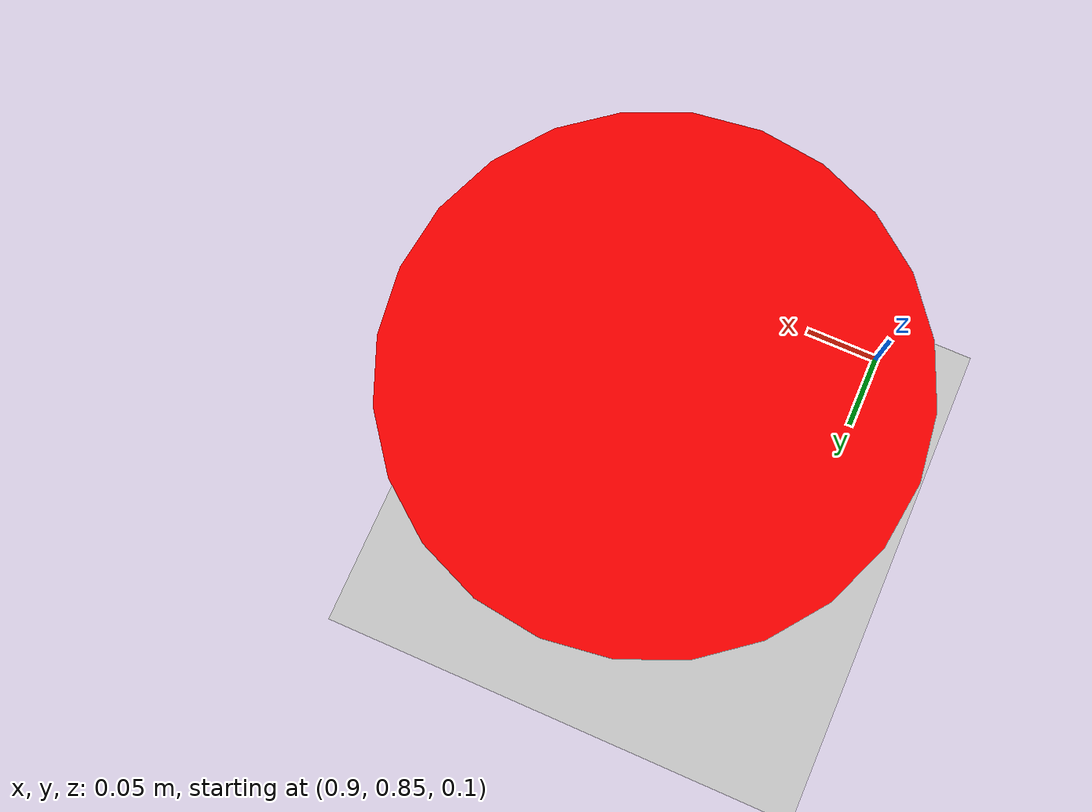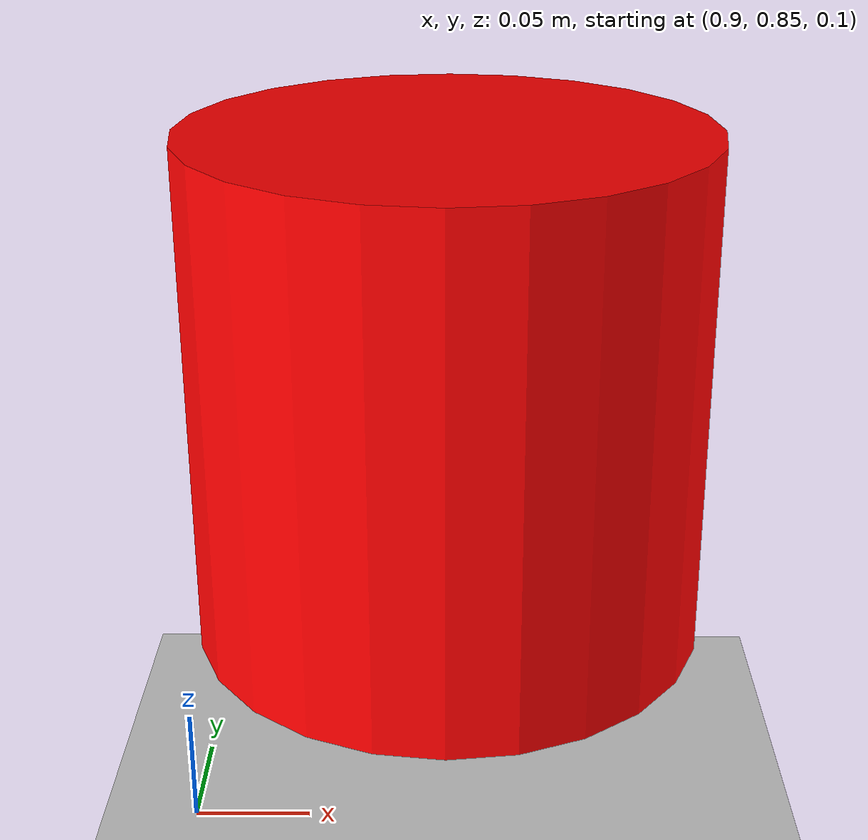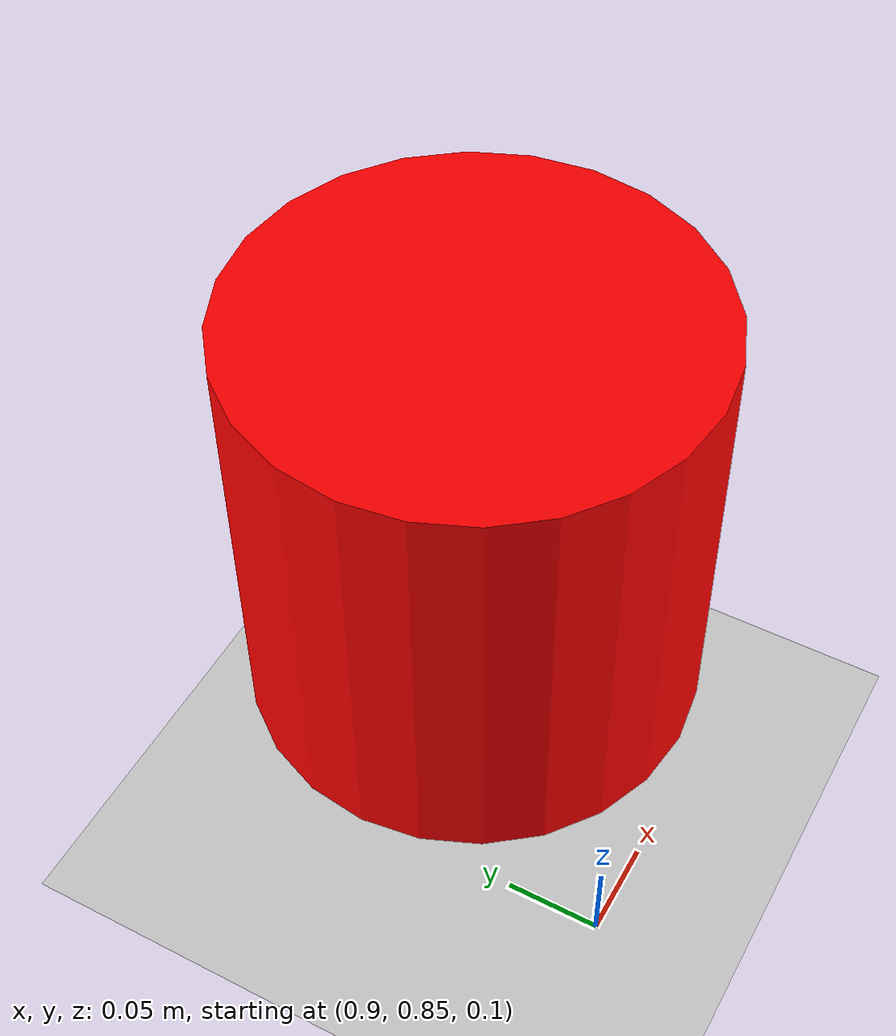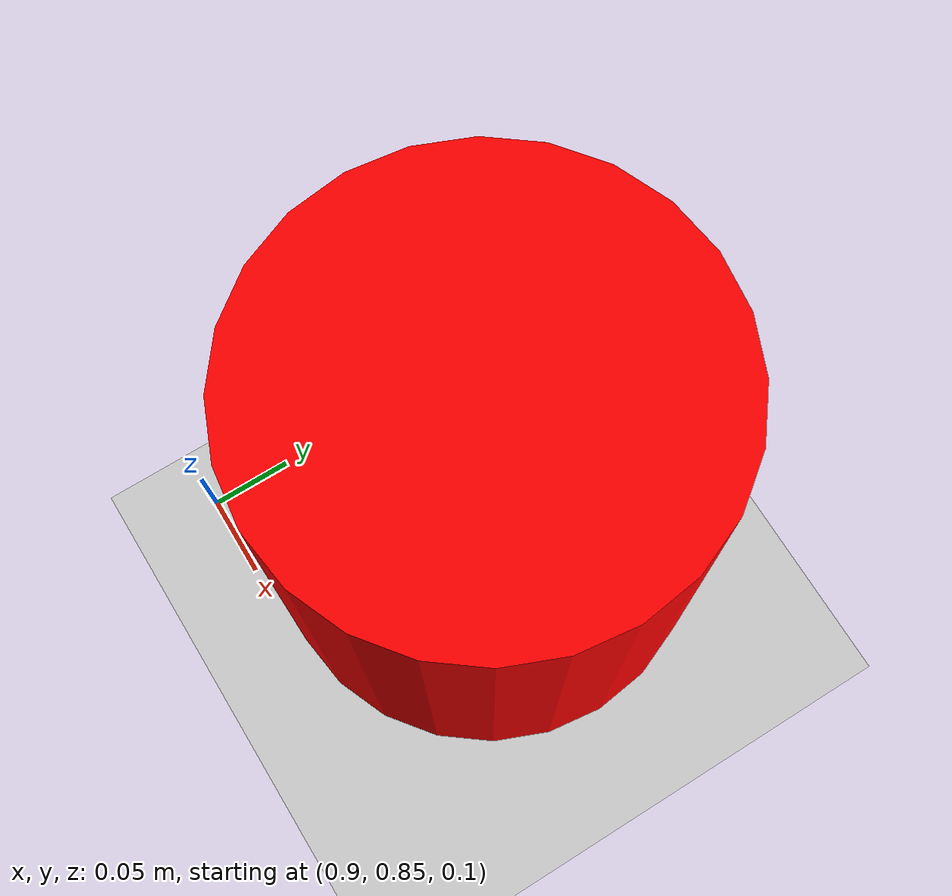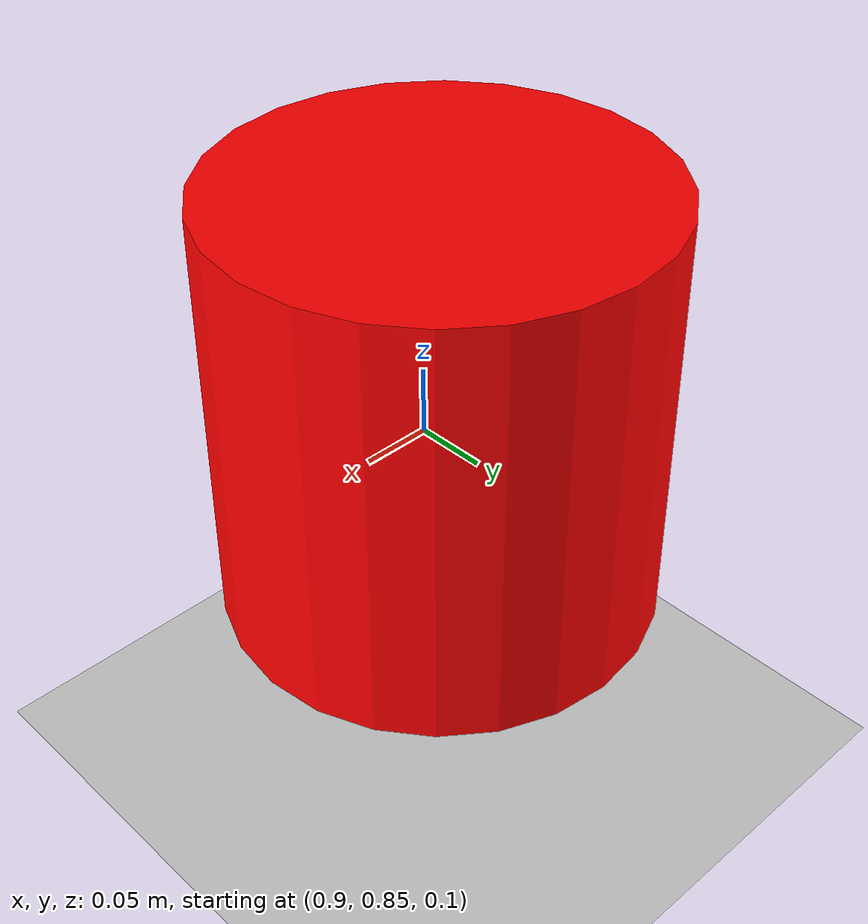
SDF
<?xml version="1.0" ?>
<sdf version="1.6">
  <world name="default">
    <plugin name="gazebo_ros_init" filename="libgazebo_ros_init.so"/>
    <plugin name="gazebo_ros_state" filename="libgazebo_ros_state.so"/>

    <include>
      <uri>model://sun</uri>
    </include>

    <include>
      <uri>model://ground_plane</uri>
    </include>

    <!-- 桶在飞机生成点正下方 — Gazebo (1.01, 0.98, 0.25) → NED (0, 0, ~0.58) -->
    <model name="test_bucket">
      <pose>1.01 0.98 0.25 0 0 0</pose>
      <link name="bucket_link">
        <inertial>
          <mass>0.5</mass>
          <inertia>
            <ixx>0.01</ixx><ixy>0</ixy><ixz>0</ixz>
            <iyy>0.01</iyy><iyz>0</iyz>
            <izz>0.01</izz>
          </inertia>
        </inertial>
        <collision name="bucket_collision">
          <geometry>
            <cylinder><radius>0.125</radius><length>0.25</length></cylinder>
          </geometry>
        </collision>
        <visual name="bucket_visual">
          <geometry>
            <cylinder><radius>0.125</radius><length>0.25</length></cylinder>
          </geometry>
          <material>
            <ambient>1 0 0 1</ambient>
            <diffuse>1 0 0 1</diffuse>
          </material>
        </visual>
      </link>
    </model>
  </world>
</sdf>
